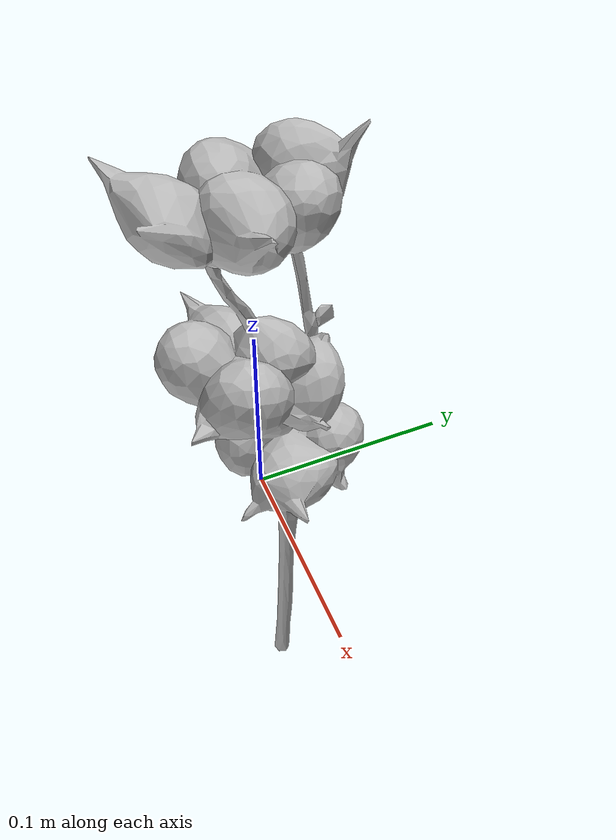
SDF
<?xml version="1.0" ?>
<sdf version="1.6">
  <model name="cotton_cluster">
    <static>true</static>
    <link name="link">
      <collision name="collision">
        <geometry>
          <mesh>
            <scale>0.4 0.4 0.4</scale>
            <uri>model://cotton_cluster/cluster.dae</uri>
          </mesh>
        </geometry>
      </collision>
      <visual name="visual">
        <geometry>
          <mesh>
            <scale>0.4 0.4 0.4</scale>
            <uri>model://cotton_cluster/cluster.dae</uri>
          </mesh>
        </geometry>
        <!-- DAE file should reference cluster.png texture internally -->
      </visual>
    </link>
  </model>
</sdf>
